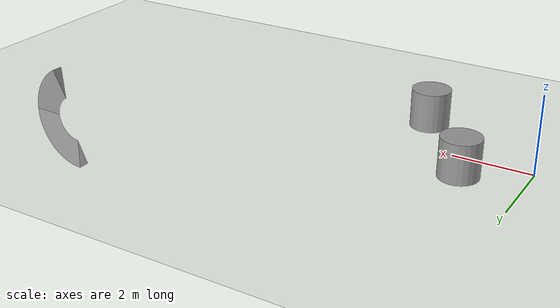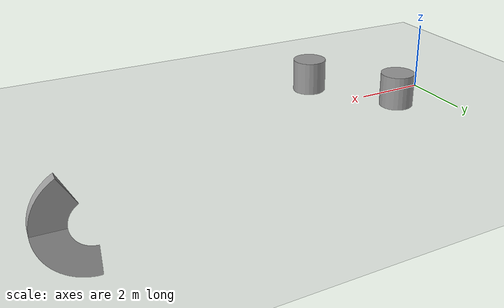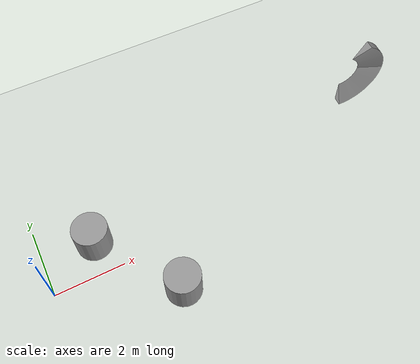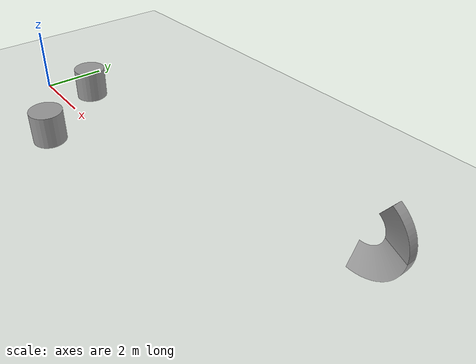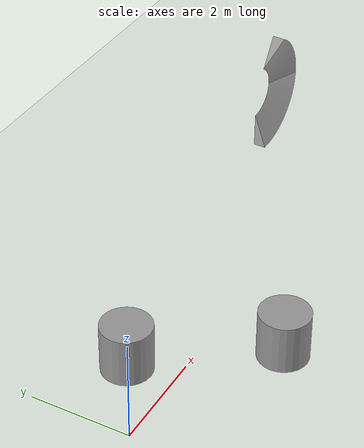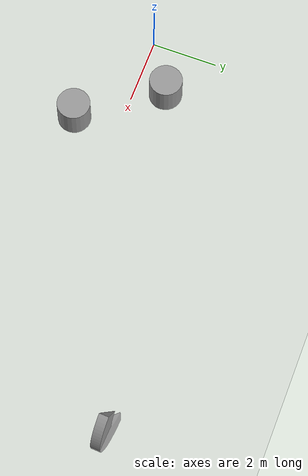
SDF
<sdf version="1.7">
 <world name="default">
  <model name="ground_plane">
   <static>1</static>
   <link name="link">
    <collision name="collision">
     <geometry><plane><normal>0 0 1</normal><size>100 100</size></plane></geometry>
     <surface><friction><ode><mu>0.7</mu><mu2>0.7</mu2></ode></friction></surface>
    </collision>
    <visual name="visual">
     <cast_shadows>0</cast_shadows>
     <geometry><plane><normal>0 0 1</normal><size>100 100</size></plane></geometry>
     <material>
      <script><uri>file://media/materials/scripts/gazebo.material</uri><name>Gazebo/Grey</name></script>
     </material>
    </visual>
   </link>
  </model>
  <model name="slope">
   <static>1</static>
   <link name="link">
    <collision name="collision">
     <geometry><mesh><uri>model://slope/slope.STL</uri></mesh></geometry>
     <surface>
      <contact><collide_bitmask>65535</collide_bitmask></contact>
      <friction><ode><mu>100</mu><mu2>50</mu2></ode></friction>
     </surface>
    </collision>
    <visual name="visual">
     <cast_shadows>0</cast_shadows>
     <geometry><mesh><uri>model://slope/slope.STL</uri></mesh></geometry>
     <material>
      <script><uri>file://media/materials/scripts/gazebo.material</uri><name>Gazebo/Grey</name></script>
     </material>
    </visual>
   </link>
   <pose>11.1182 3.1188 -0.002668 -0.008694 -0.000659 3.09227</pose>
  </model>
  <light name="sun" type="directional">
   <pose>0 0 10 0 -0 0</pose>
   <diffuse>0.8 0.8 0.8 1</diffuse>
   <specular>0.1 0.1 0.1 1</specular>
   <attenuation>
    <range>1000</range>
    <constant>0.9</constant>
    <linear>0.01</linear>
    <quadratic>0.001</quadratic>
   </attenuation>
   <direction>-0.5 0.5 -1</direction>
   <spot><inner_angle>0</inner_angle><outer_angle>0</outer_angle><falloff>0</falloff></spot>
  </light>
  <gravity>0 0 -9.81</gravity>
  <magnetic_field>6e-06 2.3e-05 -4.2e-05</magnetic_field>
  <atmosphere type="adiabatic"/>
  <physics name="default_physics" default="0" type="ode">
   <max_step_size>0.001</max_step_size>
   <real_time_factor>1</real_time_factor>
   <real_time_update_rate>1000</real_time_update_rate>
  </physics>
  <scene><ambient>0.4 0.4 0.4 1</ambient><background>0.7 0.7 0.7 1</background><shadows>1</shadows></scene>
  <spherical_coordinates>
   <surface_model>EARTH_WGS84</surface_model>
   <latitude_deg>0</latitude_deg>
   <longitude_deg>0</longitude_deg>
   <elevation>0</elevation>
   <heading_deg>0</heading_deg>
  </spherical_coordinates>
  <model name="unit_cylinder">
   <pose>1.48438 0.924426 0.5 0 -0 0</pose>
   <link name="link">
    <inertial>
     <mass>1</mass>
     <inertia><ixx>0.145833</ixx><ixy>0</ixy><ixz>0</ixz><iyy>0.145833</iyy><iyz>0</iyz><izz>0.125</izz></inertia>
    </inertial>
    <collision name="collision">
     <geometry><cylinder><radius>0.5</radius><length>1</length></cylinder></geometry>
    </collision>
    <visual name="visual">
     <geometry><cylinder><radius>0.5</radius><length>1</length></cylinder></geometry>
     <material>
      <script><name>Gazebo/Grey</name><uri>file://media/materials/scripts/gazebo.material</uri></script>
     </material>
    </visual>
   </link>
  </model>
  <model name="unit_cylinder_0">
   <pose>3.16881 -1.38472 0.5 0 -0 0</pose>
   <link name="link">
    <inertial>
     <mass>1</mass>
     <inertia><ixx>0.145833</ixx><ixy>0</ixy><ixz>0</ixz><iyy>0.145833</iyy><iyz>0</iyz><izz>0.125</izz></inertia>
    </inertial>
    <collision name="collision">
     <geometry><cylinder><radius>0.5</radius><length>1</length></cylinder></geometry>
    </collision>
    <visual name="visual">
     <geometry><cylinder><radius>0.5</radius><length>1</length></cylinder></geometry>
     <material>
      <script><name>Gazebo/Grey</name><uri>file://media/materials/scripts/gazebo.material</uri></script>
     </material>
    </visual>
   </link>
  </model>
 </world>
</sdf>
